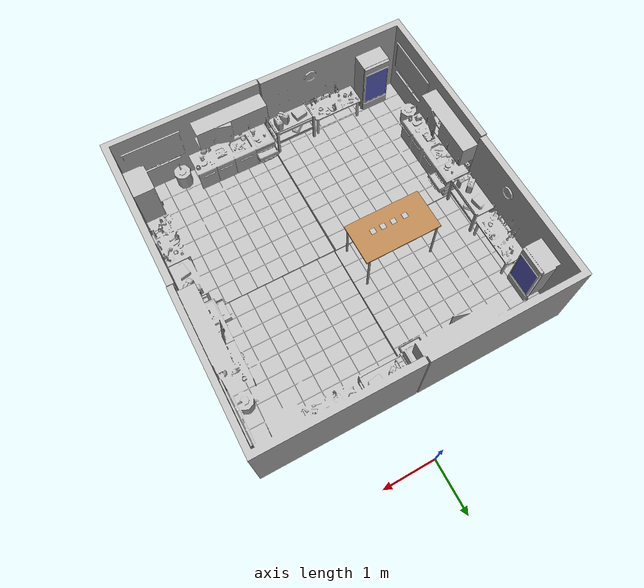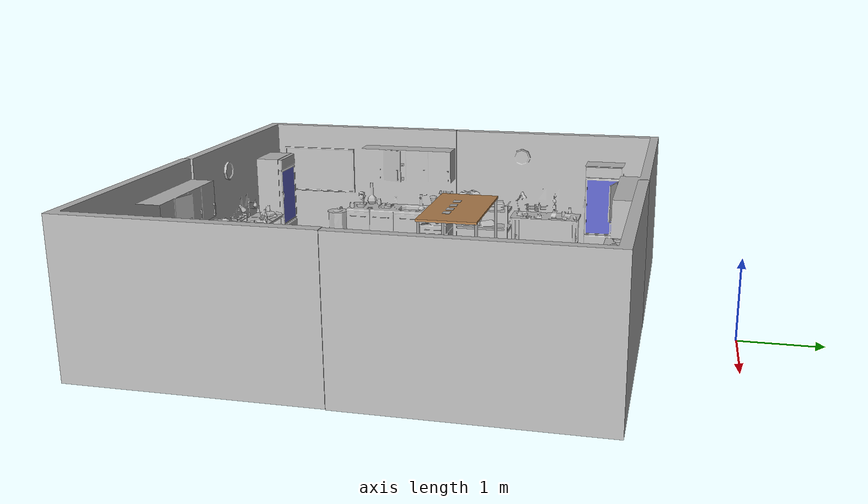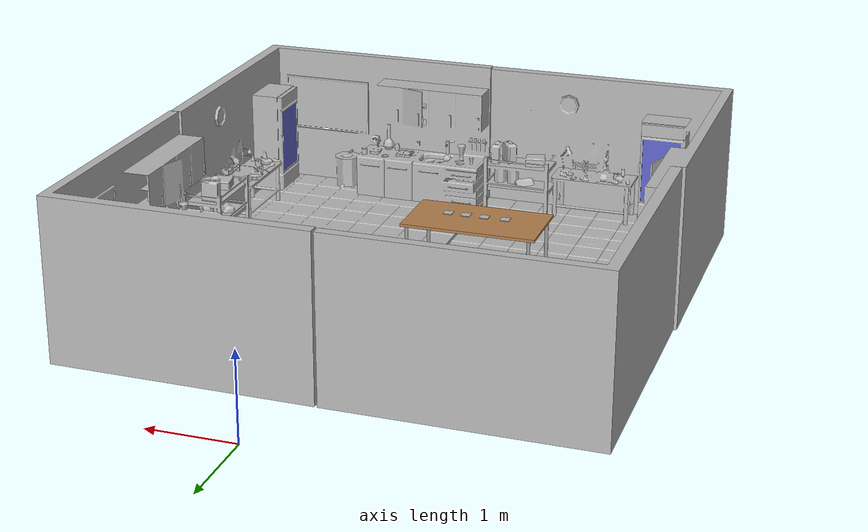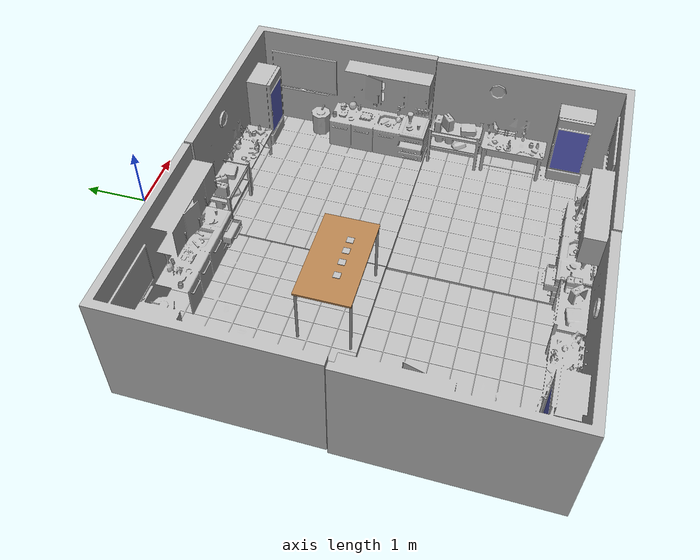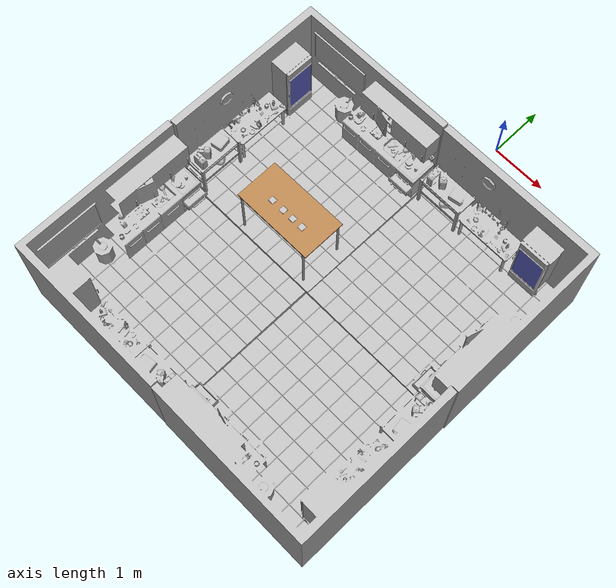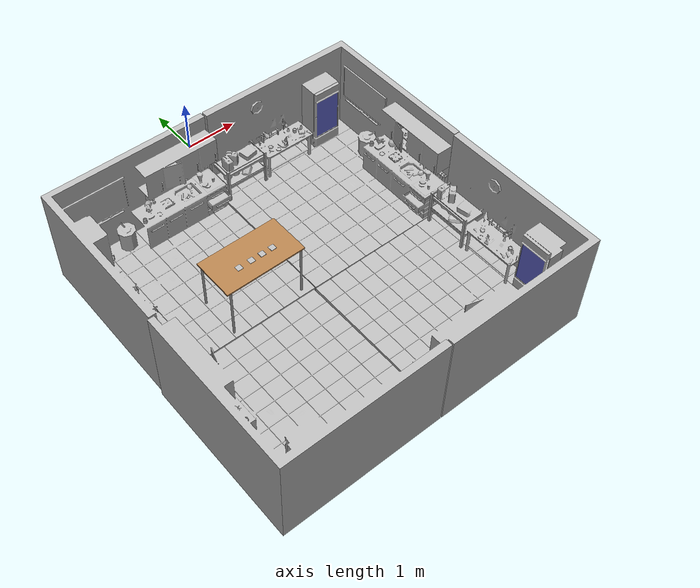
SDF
<sdf version='1.9'>
  <world name='empty'>
    <physics name='1ms' type='ignored'>
      <max_step_size>0.01</max_step_size>
      <real_time_factor>1</real_time_factor>
      <real_time_update_rate>1000</real_time_update_rate>
    </physics>
    <plugin name='gz::sim::systems::Physics' filename='ignition-gazebo-physics-system'/>
    <plugin name='gz::sim::systems::UserCommands' filename='ignition-gazebo-user-commands-system'/>
    <plugin name='gz::sim::systems::SceneBroadcaster' filename='ignition-gazebo-scene-broadcaster-system'/>
    <plugin name='gz::sim::systems::Contact' filename='ignition-gazebo-contact-system'/>
    <plugin
      filename="ignition-gazebo-sensors-system"
      name="gz::sim::systems::Sensors">
      <render_engine>ogre2</render_engine>
    </plugin>
    <gravity>0 0 -9.8</gravity>
    <magnetic_field>6e-06 2.3e-05 -4.2e-05</magnetic_field>
    <atmosphere type='adiabatic'/>
    <scene>
      <ambient>0.4 0.4 0.4 1</ambient>
      <background>0.7 0.7 0.7 1</background>
      <shadows>true</shadows>
    </scene>
    <model name='lab'>
      <static>true</static>
      <link name='link'>
        <collision name='collision'>
          <geometry>
            <mesh>
              <scale>1.5 1.5 1.5</scale>
              <uri>file:///workspaces/robo_arm_ws/install/a3c_gazebo/share/a3c_gazebo/models/lab/model://lab/meshes/lab.dae</uri>
            </mesh>
          </geometry>
        </collision>
        <visual name='visual'>
          <geometry>
            <mesh>
              <scale>1.5 1.5 1.5</scale>
              <uri>file:///workspaces/robo_arm_ws/install/a3c_gazebo/share/a3c_gazebo/models/lab/model://lab/meshes/lab.dae</uri>
            </mesh>
          </geometry>
        </visual>
        <pose>0 0 0 0 -0 0</pose>
        <inertial>
          <pose>0 0 0 0 -0 0</pose>
          <mass>1</mass>
          <inertia>
            <ixx>1</ixx>
            <ixy>0</ixy>
            <ixz>0</ixz>
            <iyy>1</iyy>
            <iyz>0</iyz>
            <izz>1</izz>
          </inertia>
        </inertial>
        <enable_wind>false</enable_wind>
      </link>
      <pose>-1.81013 -2.8557 0 0 0 -0.00371</pose>
      <self_collide>false</self_collide>
    </model>
    <model name='lab_0'>
      <static>true</static>
      <link name='link'>
        <collision name='collision'>
          <geometry>
            <mesh>
              <scale>1.5 1.5 1.5</scale>
              <uri>file:///workspaces/robo_arm_ws/install/a3c_gazebo/share/a3c_gazebo/models/lab/model://lab/meshes/lab.dae</uri>
            </mesh>
          </geometry>
        </collision>
        <visual name='visual'>
          <geometry>
            <mesh>
              <scale>1.5 1.5 1.5</scale>
              <uri>file:///workspaces/robo_arm_ws/install/a3c_gazebo/share/a3c_gazebo/models/lab/model://lab/meshes/lab.dae</uri>
            </mesh>
          </geometry>
        </visual>
        <pose>0 0 0 0 -0 0</pose>
        <inertial>
          <pose>0 0 0 0 -0 0</pose>
          <mass>1</mass>
          <inertia>
            <ixx>1</ixx>
            <ixy>0</ixy>
            <ixz>0</ixz>
            <iyy>1</iyy>
            <iyz>0</iyz>
            <izz>1</izz>
          </inertia>
        </inertial>
        <enable_wind>false</enable_wind>
      </link>
      <pose>0.900488 -2.67254 0 0 0 -1.58031</pose>
      <self_collide>false</self_collide>
    </model>
    <model name='lab_1'>
      <static>true</static>
      <link name='link'>
        <collision name='collision'>
          <geometry>
            <mesh>
              <scale>1.5 1.5 1.5</scale>
              <uri>file:///workspaces/robo_arm_ws/install/a3c_gazebo/share/a3c_gazebo/models/lab/model://lab/meshes/lab.dae</uri>
            </mesh>
          </geometry>
        </collision>
        <visual name='visual'>
          <geometry>
            <mesh>
              <scale>1.5 1.5 1.5</scale>
              <uri>file:///workspaces/robo_arm_ws/install/a3c_gazebo/share/a3c_gazebo/models/lab/model://lab/meshes/lab.dae</uri>
            </mesh>
          </geometry>
        </visual>
        <pose>0 0 0 0 -0 0</pose>
        <inertial>
          <pose>0 0 0 0 -0 0</pose>
          <mass>1</mass>
          <inertia>
            <ixx>1</ixx>
            <ixy>0</ixy>
            <ixz>0</ixz>
            <iyy>1</iyy>
            <iyz>0</iyz>
            <izz>1</izz>
          </inertia>
        </inertial>
        <enable_wind>false</enable_wind>
      </link>
      <pose>-1.64737 -5.56313 -0.005599 0 -0 1.56879</pose>
      <self_collide>false</self_collide>
    </model>
    <model name='lab_2'>
      <static>true</static>
      <link name='link'>
        <collision name='collision'>
          <geometry>
            <mesh>
              <scale>1.5 1.5 1.5</scale>
              <uri>file:///workspaces/robo_arm_ws/install/a3c_gazebo/share/a3c_gazebo/models/lab/model://lab/meshes/lab.dae</uri>
            </mesh>
          </geometry>
        </collision>
        <visual name='visual'>
          <geometry>
            <mesh>
              <scale>1.5 1.5 1.5</scale>
              <uri>file:///workspaces/robo_arm_ws/install/a3c_gazebo/share/a3c_gazebo/models/lab/model://lab/meshes/lab.dae</uri>
            </mesh>
          </geometry>
        </visual>
        <pose>0 0 0 0 -0 0</pose>
        <inertial>
          <pose>0 0 0 0 -0 0</pose>
          <mass>1</mass>
          <inertia>
            <ixx>1</ixx>
            <ixy>0</ixy>
            <ixz>0</ixz>
            <iyy>1</iyy>
            <iyz>0</iyz>
            <izz>1</izz>
          </inertia>
        </inertial>
        <enable_wind>false</enable_wind>
      </link>
      <pose>1.06901 -5.3784 0 0 -0 3.13531</pose>
      <self_collide>false</self_collide>
    </model>
    <model name='Table'>
      <static>true</static>
      <link name='link'>
        <visual name='visual1'>
          <pose>0 0 1.0 0 0 0</pose>
          <geometry>
            <box>
              <size>1.5 0.8 0.03</size>
            </box>
          </geometry>
          <material>
            <diffuse>1 1 1 1</diffuse>
            <script>
              <uri>file://media/materials/scripts/gazebo.material</uri>
              <name>Gazebo/Wood</name>
            </script>
            <pbr>
              <metal>
                <albedo_map>model://Table/Table_Diffuse.jpg</albedo_map>
              </metal>
            </pbr>
          </material>
        </visual>
        <collision name='front_left_leg'>
          <pose>0.68 0.38 0.5 0 0 0</pose>
          <geometry>
            <cylinder>
              <radius>0.02</radius>
              <length>1</length>
            </cylinder>
          </geometry>
          <surface>
            <friction>
              <ode/>
            </friction>
            <bounce/>
            <contact/>
          </surface>
        </collision>
        <visual name='front_left_leg'>
          <pose>0.68 0.38 0.5 0 0 0</pose>
          <geometry>
            <cylinder>
              <radius>0.02</radius>
              <length>1</length>
            </cylinder>
          </geometry>
          <material>
            <diffuse>0.5 0.5 0.5 1</diffuse>
            <script>
              <uri>file://media/materials/scripts/gazebo.material</uri>
              <name>Gazebo/Grey</name>
            </script>
          </material>
        </visual>
        <collision name='front_right_leg'>
          <pose>0.68 -0.38 0.5 0 0 0</pose>
          <geometry>
            <cylinder>
              <radius>0.02</radius>
              <length>1</length>
            </cylinder>
          </geometry>
          <surface>
            <friction>
              <ode/>
            </friction>
            <bounce/>
            <contact/>
          </surface>
        </collision>
        <visual name='front_right_leg'>
          <pose>0.68 -0.38 0.5 0 0 0</pose>
          <geometry>
            <cylinder>
              <radius>0.02</radius>
              <length>1</length>
            </cylinder>
          </geometry>
          <material>
            <diffuse>0.5 0.5 0.5 1</diffuse>
            <script>
              <uri>file://media/materials/scripts/gazebo.material</uri>
              <name>Gazebo/Grey</name>
            </script>
          </material>
        </visual>
        <collision name='back_right_leg'>
          <pose>-0.68 -0.38 0.5 0 0 0</pose>
          <geometry>
            <cylinder>
              <radius>0.02</radius>
              <length>1</length>
            </cylinder>
          </geometry>
          <surface>
            <friction>
              <ode/>
            </friction>
            <bounce/>
            <contact/>
          </surface>
        </collision>
        <visual name='back_right_leg'>
          <pose>-0.68 -0.38 0.5 0 0 0</pose>
          <geometry>
            <cylinder>
              <radius>0.02</radius>
              <length>1</length>
            </cylinder>
          </geometry>
          <material>
            <diffuse>0.5 0.5 0.5 1</diffuse>
            <script>
              <uri>file://media/materials/scripts/gazebo.material</uri>
              <name>Gazebo/Grey</name>
            </script>
          </material>
        </visual>
        <collision name='back_left_leg'>
          <pose>-0.68 0.38 0.5 0 0 0</pose>
          <geometry>
            <cylinder>
              <radius>0.02</radius>
              <length>1</length>
            </cylinder>
          </geometry>
          <surface>
            <friction>
              <ode/>
            </friction>
            <bounce/>
            <contact/>
          </surface>
        </collision>
        <visual name='back_left_leg'>
          <pose>-0.68 0.38 0.5 0 0 0</pose>
          <geometry>
            <cylinder>
              <radius>0.02</radius>
              <length>1</length>
            </cylinder>
          </geometry>
          <material>
            <diffuse>0.5 0.5 0.5 1</diffuse>
            <script>
              <uri>file://media/materials/scripts/gazebo.material</uri>
              <name>Gazebo/Grey</name>
            </script>
          </material>
        </visual>
        <pose>0 0 0 0 -0 0</pose>
        <inertial>
          <pose>0 0 0 0 -0 0</pose>
          <mass>1</mass>
          <inertia>
            <ixx>1</ixx>
            <ixy>0</ixy>
            <ixz>0</ixz>
            <iyy>1</iyy>
            <iyz>0</iyz>
            <izz>1</izz>
          </inertia>
        </inertial>
        <enable_wind>false</enable_wind>
      </link>
      <pose>-1.25 -3.62 0.11 0 -0 0</pose>
      <self_collide>false</self_collide>
    </model>
    <include>
      <uri>model://aruco_2</uri>
      <name>aruco_2</name>
      <pose>-1.54509 -3.7 1.13 0 -0 0</pose>
    </include>
    <include>
      <uri>model://aruco_1</uri>
      <name>aruco_1</name>
      <pose>-1.31 -3.7 1.13 0 -0 0</pose>
    </include>
    <include>
      <uri>model://aruco_0</uri>
      <name>aruco_0</name>
      <pose>-1.1 -3.7 1.13 0 -0 0</pose>
    </include>
    <include>
      <uri>model://aruco_3</uri>
      <name>aruco_3</name>
      <pose>-0.9 -3.7 1.13 0 -0 0</pose>
    </include>
    <light name='sun' type='directional'>
      <pose>0 0 10 0 -0 0</pose>
      <cast_shadows>true</cast_shadows>
      <intensity>1</intensity>
      <direction>-0.5 0.1 -0.9</direction>
      <diffuse>0.8 0.8 0.8 1</diffuse>
      <specular>0.2 0.2 0.2 1</specular>
      <attenuation>
        <range>1000</range>
        <linear>0.01</linear>
        <constant>0.90000000000000002</constant>
        <quadratic>0.001</quadratic>
      </attenuation>
      <spot>
        <inner_angle>0</inner_angle>
        <outer_angle>0</outer_angle>
        <falloff>0</falloff>
      </spot>
    </light>
  </world>
</sdf>

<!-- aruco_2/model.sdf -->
<sdf version="1.6">
  <model name="aruco_2">
    <static>true</static>
    <link name="link">
      <collision name="collision">
        <geometry>
          <mesh>
            <uri>meshes/aruco_2.dae</uri>
             <scale>0.1 0.1 0.1</scale>
          </mesh>
        </geometry>
      </collision>
      <visual name="visual">
        <geometry>
          <mesh>
            <uri>meshes/aruco_2.dae</uri>
             <scale>0.1 0.1 0.1</scale>
          </mesh>
        </geometry>
      </visual>
    </link>
  </model>
</sdf>

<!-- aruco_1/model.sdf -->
<sdf version="1.6">
  <model name="aruco_1">
    <static>true</static>
    <link name="link">
      <collision name="collision">
        <geometry>
          <mesh>
            <uri>meshes/aruco_1.dae</uri>
            <scale>0.1 0.1 0.1</scale>
          </mesh>
        </geometry>
      </collision>
      <visual name="visual">
        <geometry>
          <mesh>
            <uri>meshes/aruco_1.dae</uri>
            <scale>0.1 0.1 0.1</scale>
          </mesh>
        </geometry>
      </visual>
    </link>
  </model>
</sdf>

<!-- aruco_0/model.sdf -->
<sdf version="1.6">
  <model name="aruco_0">
    <static>true</static>
    <link name="link">
      <collision name="collision">
        <geometry>
          <mesh>
            <uri>meshes/aruco_0.dae</uri>
            <scale>0.1 0.1 0.1</scale>
          </mesh>
        </geometry>
      </collision>
      <visual name="visual">
        <geometry>
          <mesh>
            <uri>meshes/aruco_0.dae</uri>
            <scale>0.1 0.1 0.1</scale>
          </mesh>
        </geometry>
      </visual>
    </link>
  </model>
</sdf>

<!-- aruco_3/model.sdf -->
<sdf version="1.6">
  <model name="aruco_3">
    <static>true</static>
    <link name="link">
      <collision name="collision">
        <geometry>
          <mesh>
            <uri>meshes/aruco_3.dae</uri>
            <scale>0.1 0.1 0.1</scale>
          </mesh>
        </geometry>
      </collision>
      <visual name="visual">
        <geometry>
          <mesh>
            <uri>meshes/aruco_3.dae</uri>
            <scale>0.1 0.1 0.1</scale>
          </mesh>
        </geometry>
      </visual>
    </link>
  </model>
</sdf>
